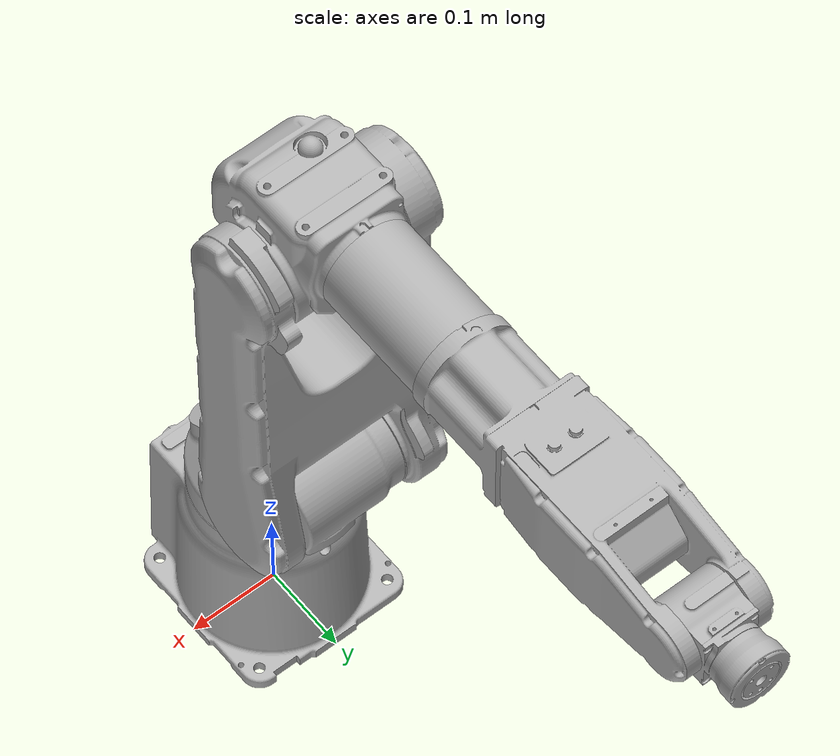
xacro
<?xml version="1.0" ?>
<robot name="mh5lsii_01" xmlns:xacro="http://www.ros.org/wiki/xacro">

<xacro:include filename="$(find mh5lsii_01_description)/urdf/materials.xacro" />
<xacro:include filename="$(find mh5lsii_01_description)/urdf/mh5lsii_01.trans" />
<xacro:include filename="$(find mh5lsii_01_description)/urdf/mh5lsii_01.gazebo" />
<link name="base_link">
  <visual>
    <origin xyz="0 0 0" rpy="0 0 0"/>
    <geometry>
      <mesh filename="package://mh5lsii_01_description/meshes/base_link.stl" scale="0.001 0.001 0.001"/>
    </geometry>
    <material name="silver"/>
  </visual>
  <collision>
    <origin xyz="0 0 0" rpy="0 0 0"/>
    <geometry>
      <mesh filename="package://mh5lsii_01_description/meshes/base_link.stl" scale="0.001 0.001 0.001"/>
    </geometry>
  </collision>
</link>

<link name="mh5lsii_03_v1_1">
  <visual>
    <origin xyz="-0.0 -0.0 -0.229" rpy="0 0 0"/>
    <geometry>
      <mesh filename="package://mh5lsii_01_description/meshes/mh5lsii_03_v1_1.stl" scale="0.001 0.001 0.001"/>
    </geometry>
    <material name="silver"/>
  </visual>
  <collision>
    <origin xyz="-0.0 -0.0 -0.229" rpy="0 0 0"/>
    <geometry>
      <mesh filename="package://mh5lsii_01_description/meshes/mh5lsii_03_v1_1.stl" scale="0.001 0.001 0.001"/>
    </geometry>
  </collision>
</link>

<link name="mh5lsii_04_v1_1">
  <visual>
    <origin xyz="0.0555 -0.088 -0.33" rpy="0 0 0"/>
    <geometry>
      <mesh filename="package://mh5lsii_01_description/meshes/mh5lsii_04_v1_1.stl" scale="0.001 0.001 0.001"/>
    </geometry>
    <material name="silver"/>
  </visual>
  <collision>
    <origin xyz="0.0555 -0.088 -0.33" rpy="0 0 0"/>
    <geometry>
      <mesh filename="package://mh5lsii_01_description/meshes/mh5lsii_04_v1_1.stl" scale="0.001 0.001 0.001"/>
    </geometry>
  </collision>
</link>

<link name="mh5lsii_05_v1_1">
  <visual>
    <origin xyz="0.0625 -0.088 -0.73" rpy="0 0 0"/>
    <geometry>
      <mesh filename="package://mh5lsii_01_description/meshes/mh5lsii_05_v1_1.stl" scale="0.001 0.001 0.001"/>
    </geometry>
    <material name="silver"/>
  </visual>
  <collision>
    <origin xyz="0.0625 -0.088 -0.73" rpy="0 0 0"/>
    <geometry>
      <mesh filename="package://mh5lsii_01_description/meshes/mh5lsii_05_v1_1.stl" scale="0.001 0.001 0.001"/>
    </geometry>
  </collision>
</link>

<link name="m5h_intermedio56_v2_1">
  <visual>
    <origin xyz="-0.0005 -0.1585 -0.77" rpy="0 0 0"/>
    <geometry>
      <mesh filename="package://mh5lsii_01_description/meshes/m5h_intermedio56_v2_1.stl" scale="0.001 0.001 0.001"/>
    </geometry>
    <material name="silver"/>
  </visual>
  <collision>
    <origin xyz="-0.0005 -0.1585 -0.77" rpy="0 0 0"/>
    <geometry>
      <mesh filename="package://mh5lsii_01_description/meshes/m5h_intermedio56_v2_1.stl" scale="0.001 0.001 0.001"/>
    </geometry>
  </collision>
</link>

<link name="mh5lsii_06_v1_1">
  <visual>
    <origin xyz="-0.0005 -0.2885 -0.77" rpy="0 0 0"/>
    <geometry>
      <mesh filename="package://mh5lsii_01_description/meshes/mh5lsii_06_v1_1.stl" scale="0.001 0.001 0.001"/>
    </geometry>
    <material name="silver"/>
  </visual>
  <collision>
    <origin xyz="-0.0005 -0.2885 -0.77" rpy="0 0 0"/>
    <geometry>
      <mesh filename="package://mh5lsii_01_description/meshes/mh5lsii_06_v1_1.stl" scale="0.001 0.001 0.001"/>
    </geometry>
  </collision>
</link>

<link name="mh5lsii_07_v1_1">
  <visual>
    <origin xyz="-0.0315 -0.622 -0.77" rpy="0 0 0"/>
    <geometry>
      <mesh filename="package://mh5lsii_01_description/meshes/mh5lsii_07_v1_1.stl" scale="0.001 0.001 0.001"/>
    </geometry>
    <material name="silver"/>
  </visual>
  <collision>
    <origin xyz="-0.0315 -0.622 -0.77" rpy="0 0 0"/>
    <geometry>
      <mesh filename="package://mh5lsii_01_description/meshes/mh5lsii_07_v1_1.stl" scale="0.001 0.001 0.001"/>
    </geometry>
  </collision>
</link>

<link name="mh5lsii_08_v1_1">
  <visual>
    <origin xyz="-0.0015 -0.6725 -0.77" rpy="0 0 0"/>
    <geometry>
      <mesh filename="package://mh5lsii_01_description/meshes/mh5lsii_08_v1_1.stl" scale="0.001 0.001 0.001"/>
    </geometry>
    <material name="silver"/>
  </visual>
  <collision>
    <origin xyz="-0.0015 -0.6725 -0.77" rpy="0 0 0"/>
    <geometry>
      <mesh filename="package://mh5lsii_01_description/meshes/mh5lsii_08_v1_1.stl" scale="0.001 0.001 0.001"/>
    </geometry>
  </collision>
</link>

<joint name="Revolute 1" type="revolute">
  <origin xyz="0.0 0.0 0.229" rpy="0 0 0"/>
  <parent link="base_link"/>
  <child link="mh5lsii_03_v1_1"/>
  <axis xyz="0.0 0.0 1.0"/>
  <limit upper="2.96706" lower="-2.96706" effort="100" velocity="100"/>
</joint>

<joint name="Revolute 2" type="revolute">
  <origin xyz="-0.0555 0.088 0.101" rpy="0 0 0"/>
  <parent link="mh5lsii_03_v1_1"/>
  <child link="mh5lsii_04_v1_1"/>
  <axis xyz="-1.0 0.0 0.0"/>
  <limit upper="2.617994" lower="-1.134464" effort="100" velocity="100"/>
</joint>

<joint name="Revolute 3" type="revolute">
  <origin xyz="-0.007 0.0 0.4" rpy="0 0 0"/>
  <parent link="mh5lsii_04_v1_1"/>
  <child link="mh5lsii_05_v1_1"/>
  <axis xyz="1.0 0.0 0.0"/>
  <limit upper="2.70526" lower="-1.134464" effort="100" velocity="100"/>
</joint>

<joint name="Slider 4" type="prismatic">
  <origin xyz="0.063 0.0705 0.04" rpy="0 0 0"/>
  <parent link="mh5lsii_05_v1_1"/>
  <child link="m5h_intermedio56_v2_1"/>
  <axis xyz="0.0 1.0 0.0"/>
  <limit upper="0.05" lower="0.0" effort="100" velocity="100"/>
</joint>

<joint name="Revolute 5" type="revolute">
  <origin xyz="0.0 0.13 0.0" rpy="0 0 0"/>
  <parent link="m5h_intermedio56_v2_1"/>
  <child link="mh5lsii_06_v1_1"/>
  <axis xyz="0.0 1.0 0.0"/>
  <limit upper="3.316126" lower="-2.96706" effort="100" velocity="100"/>
</joint>

<joint name="Revolute 6" type="revolute">
  <origin xyz="0.031 0.3335 0.0" rpy="0 0 0"/>
  <parent link="mh5lsii_06_v1_1"/>
  <child link="mh5lsii_07_v1_1"/>
  <axis xyz="-1.0 0.0 0.0"/>
  <limit upper="2.356194" lower="-2.356194" effort="100" velocity="100"/>
</joint>

<joint name="Revolute 7" type="continuous">
  <origin xyz="-0.03 0.0505 0.0" rpy="0 0 0"/>
  <parent link="mh5lsii_07_v1_1"/>
  <child link="mh5lsii_08_v1_1"/>
  <axis xyz="0.0 1.0 0.0"/>
</joint>

</robot>

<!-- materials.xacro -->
<robot name="mh5lsii_01" xmlns:xacro="http://www.ros.org/wiki/xacro" >

<material name="silver">
  <color rgba="0.700 0.700 0.700 1.000"/>
</material>

</robot>

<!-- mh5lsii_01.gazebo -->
<robot name="mh5lsii_01" xmlns:xacro="http://www.ros.org/wiki/xacro" >

<xacro:property name="body_color" value="Gazebo/Silver" />

<gazebo>
  <plugin name="control" filename="libgazebo_ros_control.so"/>
</gazebo>
<gazebo reference="base_link">
  <material>${body_color}</material>
  <mu1>0.2</mu1>
  <mu2>0.2</mu2>
  <selfCollide>true</selfCollide>
  <gravity>true</gravity>
</gazebo>

<gazebo reference="mh5lsii_03_v1_1">
  <material>${body_color}</material>
  <mu1>0.2</mu1>
  <mu2>0.2</mu2>
  <selfCollide>true</selfCollide>
</gazebo>

<gazebo reference="mh5lsii_04_v1_1">
  <material>${body_color}</material>
  <mu1>0.2</mu1>
  <mu2>0.2</mu2>
  <selfCollide>true</selfCollide>
</gazebo>

<gazebo reference="mh5lsii_05_v1_1">
  <material>${body_color}</material>
  <mu1>0.2</mu1>
  <mu2>0.2</mu2>
  <selfCollide>true</selfCollide>
</gazebo>

<gazebo reference="m5h_intermedio56_v2_1">
  <material>${body_color}</material>
  <mu1>0.2</mu1>
  <mu2>0.2</mu2>
  <selfCollide>true</selfCollide>
</gazebo>

<gazebo reference="mh5lsii_06_v1_1">
  <material>${body_color}</material>
  <mu1>0.2</mu1>
  <mu2>0.2</mu2>
  <selfCollide>true</selfCollide>
</gazebo>

<gazebo reference="mh5lsii_07_v1_1">
  <material>${body_color}</material>
  <mu1>0.2</mu1>
  <mu2>0.2</mu2>
  <selfCollide>true</selfCollide>
</gazebo>

<gazebo reference="mh5lsii_08_v1_1">
  <material>${body_color}</material>
  <mu1>0.2</mu1>
  <mu2>0.2</mu2>
  <selfCollide>true</selfCollide>
</gazebo>

</robot>
